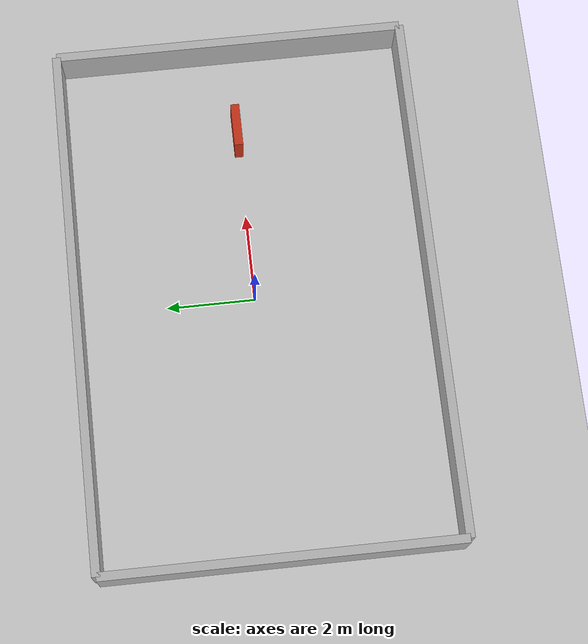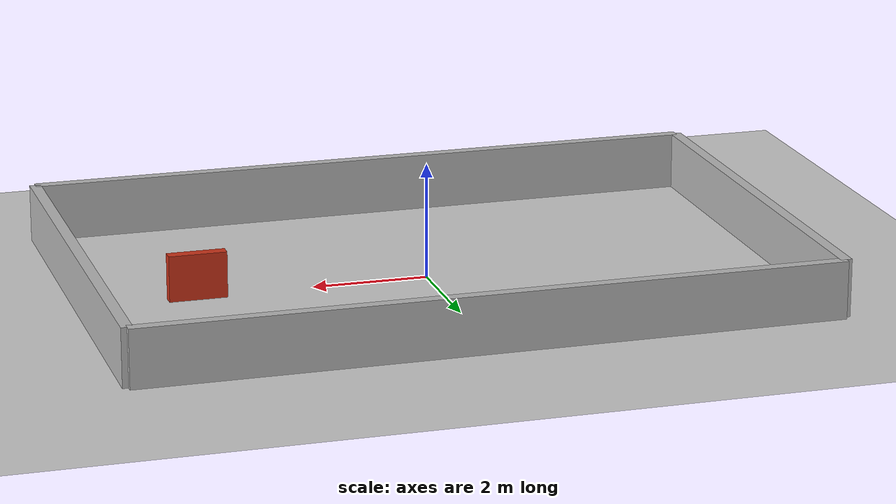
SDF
<?xml version="1.0"?>
<sdf version="1.6">
  <world name="ciima_obstacle_test">

    <include>
      <uri>model://ground_plane</uri>
    </include>

    <include>
      <uri>model://sun</uri>
    </include>

    <!-- Static obstacle -->
    <model name="test_obstacle">
      <static>true</static>
      <pose>4.0 0.0 0.4 0 0 0</pose>
      <link name="obstacle_link">
        <collision name="collision">
          <geometry>
            <box><size>1.0 0.2 0.8</size></box>
          </geometry>
        </collision>
        <visual name="visual">
          <geometry>
            <box><size>1.0 0.2 0.8</size></box>
          </geometry>
          <material>
            <ambient>0.8 0.2 0.1 1</ambient>
            <diffuse>0.8 0.2 0.1 1</diffuse>
          </material>
        </visual>
      </link>
    </model>

    <!-- Arena walls -->
    <model name="north_wall">
      <static>true</static>
      <pose>0 4 0.5 0 0 0</pose>
      <link name="wall">
        <collision name="collision">
          <geometry><box><size>12 0.2 1</size></box></geometry>
        </collision>
        <visual name="visual">
          <geometry><box><size>12 0.2 1</size></box></geometry>
        </visual>
      </link>
    </model>

    <model name="south_wall">
      <static>true</static>
      <pose>0 -4 0.5 0 0 0</pose>
      <link name="wall">
        <collision name="collision">
          <geometry><box><size>12 0.2 1</size></box></geometry>
        </collision>
        <visual name="visual">
          <geometry><box><size>12 0.2 1</size></box></geometry>
        </visual>
      </link>
    </model>

    <model name="east_wall">
      <static>true</static>
      <pose>6 0 0.5 0 0 0</pose>
      <link name="wall">
        <collision name="collision">
          <geometry><box><size>0.2 8 1</size></box></geometry>
        </collision>
        <visual name="visual">
          <geometry><box><size>0.2 8 1</size></box></geometry>
        </visual>
      </link>
    </model>

    <model name="west_wall">
      <static>true</static>
      <pose>-6 0 0.5 0 0 0</pose>
      <link name="wall">
        <collision name="collision">
          <geometry><box><size>0.2 8 1</size></box></geometry>
        </collision>
        <visual name="visual">
          <geometry><box><size>0.2 8 1</size></box></geometry>
        </visual>
      </link>
    </model>

  </world>
</sdf>
